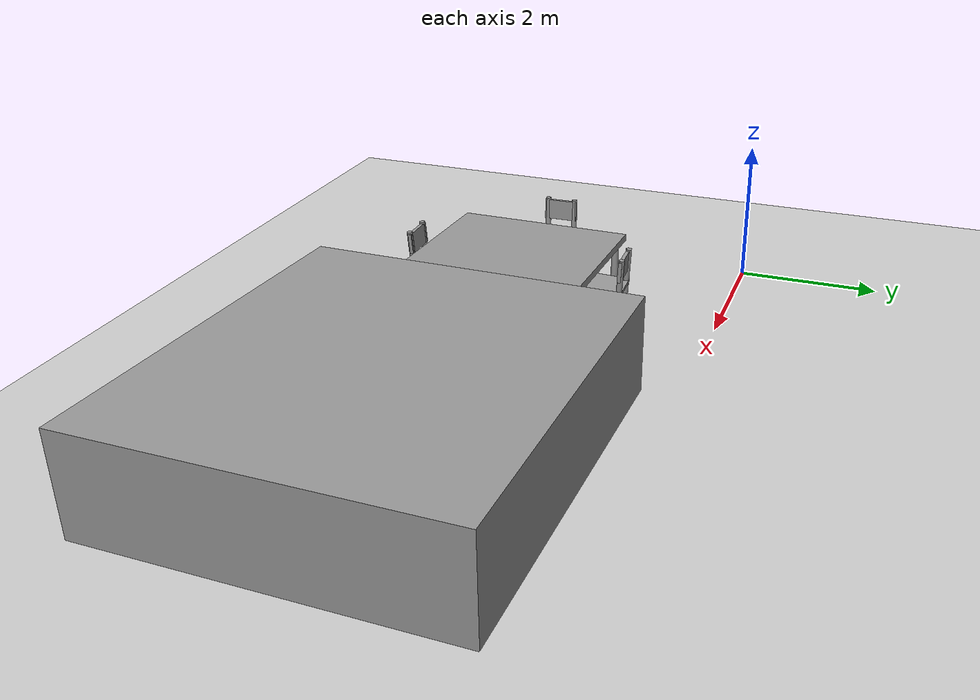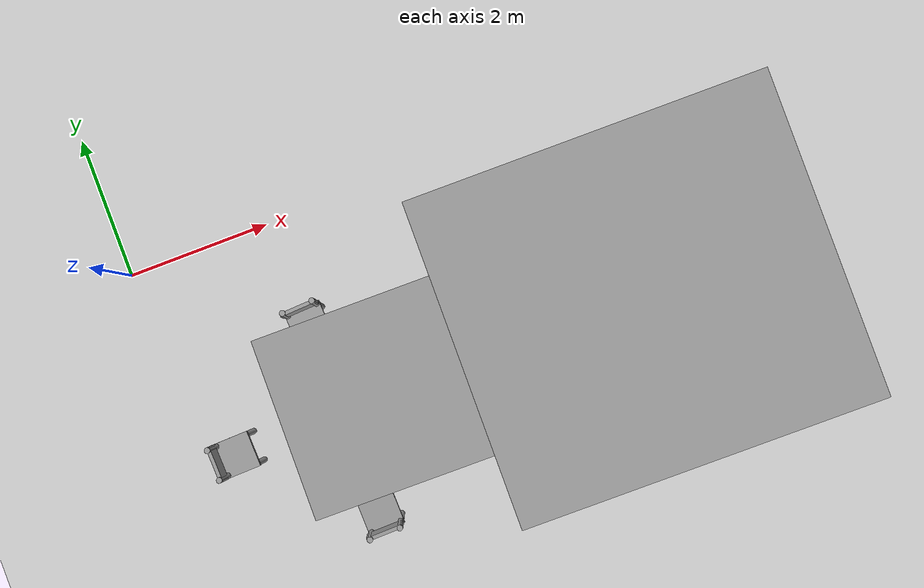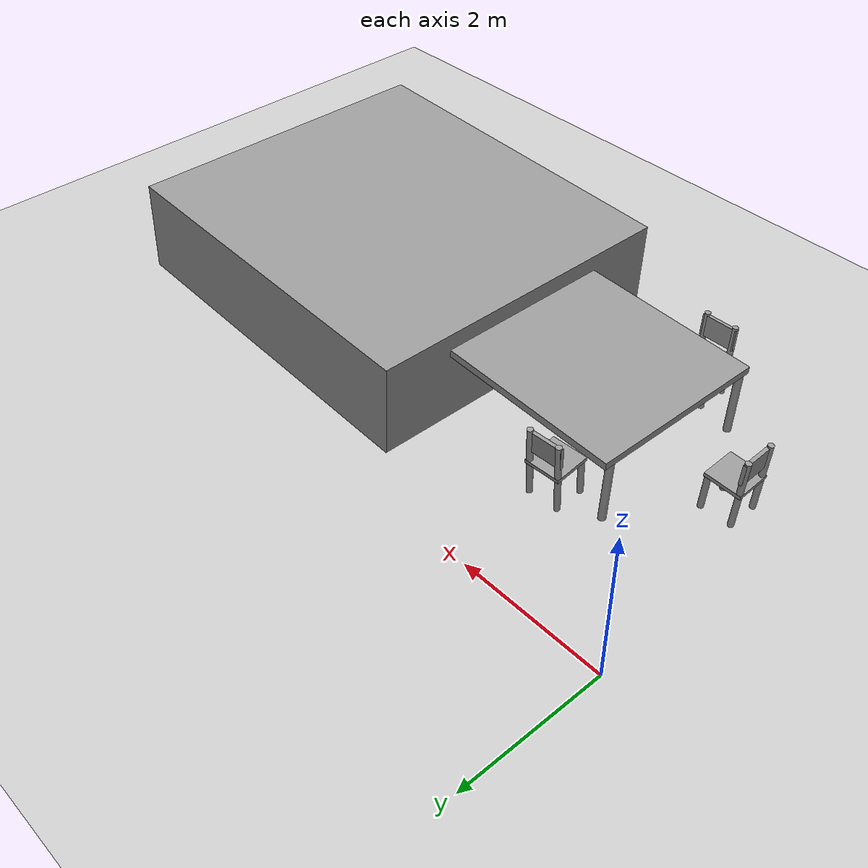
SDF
<sdf version="1.6">
 <world name="default">
  <model name="ground_plane">
   <static>1</static>
   <link name="link">
    <collision name="collision">
     <geometry><plane><normal>0 0 1</normal><size>100 100</size></plane></geometry>
     <surface><friction><ode><mu>100</mu><mu2>50</mu2></ode></friction></surface>
    </collision>
    <visual name="visual">
     <cast_shadows>0</cast_shadows>
     <geometry><plane><normal>0 0 1</normal><size>100 100</size></plane></geometry>
     <material>
      <script><uri>file://media/materials/scripts/gazebo.material</uri><name>Gazebo/Grey</name></script>
     </material>
    </visual>
   </link>
  </model>
  <model name="chair">
   <link name="link_2">
    <pose>0.235 -0.21 -0.2375 0 -0 0</pose>
    <inertial>
     <mass>1</mass>
     <inertia><ixx>0.145833</ixx><ixy>0</ixy><ixz>0</ixz><iyy>0.145833</iyy><iyz>0</iyz><izz>0.125</izz></inertia>
    </inertial>
    <visual name="visual">
     <geometry><cylinder><radius>0.04</radius><length>0.5</length></cylinder></geometry>
     <material>
      <lighting>1</lighting>
      <script><uri>file://media/materials/scripts/gazebo.material</uri><name>Gazebo/Grey</name></script>
      <shader type="pixel"><normal_map>__default__</normal_map></shader>
      <ambient>0.3 0.3 0.3 1</ambient>
      <diffuse>0.7 0.7 0.7 1</diffuse>
      <specular>0.01 0.01 0.01 1</specular>
      <emissive>0 0 0 1</emissive>
     </material>
    </visual>
    <collision name="collision">
     <geometry><cylinder><radius>0.04</radius><length>0.5</length></cylinder></geometry>
     <surface>
      <friction>
       <ode><mu>1</mu><mu2>1</mu2><fdir1>0 0 0</fdir1><slip1>0</slip1><slip2>0</slip2></ode>
       <torsional>
        <coefficient>1</coefficient>
        <patch_radius>0</patch_radius>
        <surface_radius>0</surface_radius>
        <use_patch_radius>1</use_patch_radius>
        <ode><slip>0</slip></ode>
       </torsional>
      </friction>
      <bounce><restitution_coefficient>0</restitution_coefficient><threshold>1e+06</threshold></bounce>
      <contact>
       <collide_without_contact>0</collide_without_contact>
       <collide_without_contact_bitmask>1</collide_without_contact_bitmask>
       <collide_bitmask>1</collide_bitmask>
       <ode>
        <soft_cfm>0</soft_cfm>
        <soft_erp>0.2</soft_erp>
        <kp>1e+13</kp>
        <kd>1</kd>
        <max_vel>0.01</max_vel>
        <min_depth>0</min_depth>
       </ode>
       <bullet>
        <split_impulse>1</split_impulse>
        <split_impulse_penetration_threshold>-0.01</split_impulse_penetration_threshold>
        <soft_cfm>0</soft_cfm>
        <soft_erp>0.2</soft_erp>
        <kp>1e+13</kp>
        <kd>1</kd>
       </bullet>
      </contact>
     </surface>
    </collision>
   </link>
   <link name="link_2_clone">
    <pose>0.245 0.21 -0.2375 0 -0 0</pose>
    <inertial>
     <mass>1</mass>
     <inertia><ixx>0.145833</ixx><ixy>0</ixy><ixz>0</ixz><iyy>0.145833</iyy><iyz>0</iyz><izz>0.125</izz></inertia>
    </inertial>
    <visual name="visual">
     <geometry><cylinder><radius>0.04</radius><length>0.5</length></cylinder></geometry>
     <material>
      <lighting>1</lighting>
      <script><uri>file://media/materials/scripts/gazebo.material</uri><name>Gazebo/Grey</name></script>
      <shader type="pixel"><normal_map>__default__</normal_map></shader>
      <ambient>0.3 0.3 0.3 1</ambient>
      <diffuse>0.7 0.7 0.7 1</diffuse>
      <specular>0.01 0.01 0.01 1</specular>
      <emissive>0 0 0 1</emissive>
     </material>
    </visual>
    <collision name="collision">
     <geometry><cylinder><radius>0.04</radius><length>0.5</length></cylinder></geometry>
     <surface>
      <friction>
       <ode><mu>1</mu><mu2>1</mu2><fdir1>0 0 0</fdir1><slip1>0</slip1><slip2>0</slip2></ode>
       <torsional>
        <coefficient>1</coefficient>
        <patch_radius>0</patch_radius>
        <surface_radius>0</surface_radius>
        <use_patch_radius>1</use_patch_radius>
        <ode><slip>0</slip></ode>
       </torsional>
      </friction>
      <bounce><restitution_coefficient>0</restitution_coefficient><threshold>1e+06</threshold></bounce>
      <contact>
       <collide_without_contact>0</collide_without_contact>
       <collide_without_contact_bitmask>1</collide_without_contact_bitmask>
       <collide_bitmask>1</collide_bitmask>
       <ode>
        <soft_cfm>0</soft_cfm>
        <soft_erp>0.2</soft_erp>
        <kp>1e+13</kp>
        <kd>1</kd>
        <max_vel>0.01</max_vel>
        <min_depth>0</min_depth>
       </ode>
       <bullet>
        <split_impulse>1</split_impulse>
        <split_impulse_penetration_threshold>-0.01</split_impulse_penetration_threshold>
        <soft_cfm>0</soft_cfm>
        <soft_erp>0.2</soft_erp>
        <kp>1e+13</kp>
        <kd>1</kd>
       </bullet>
      </contact>
     </surface>
    </collision>
   </link>
   <link name="link_2_clone_1">
    <pose>-0.175 -0.21 0.0375 0 -0 0</pose>
    <inertial>
     <mass>1</mass>
     <inertia><ixx>0.145833</ixx><ixy>0</ixy><ixz>0</ixz><iyy>0.145833</iyy><iyz>0</iyz><izz>0.125</izz></inertia>
    </inertial>
    <visual name="visual">
     <geometry><cylinder><radius>0.04</radius><length>1</length></cylinder></geometry>
     <material>
      <lighting>1</lighting>
      <script><uri>file://media/materials/scripts/gazebo.material</uri><name>Gazebo/Grey</name></script>
      <shader type="pixel"><normal_map>__default__</normal_map></shader>
      <ambient>0.3 0.3 0.3 1</ambient>
      <diffuse>0.7 0.7 0.7 1</diffuse>
      <specular>0.01 0.01 0.01 1</specular>
      <emissive>0 0 0 1</emissive>
     </material>
    </visual>
    <collision name="collision">
     <geometry><cylinder><radius>0.04</radius><length>1</length></cylinder></geometry>
     <surface>
      <friction>
       <ode><mu>1</mu><mu2>1</mu2><fdir1>0 0 0</fdir1><slip1>0</slip1><slip2>0</slip2></ode>
       <torsional>
        <coefficient>1</coefficient>
        <patch_radius>0</patch_radius>
        <surface_radius>0</surface_radius>
        <use_patch_radius>1</use_patch_radius>
        <ode><slip>0</slip></ode>
       </torsional>
      </friction>
      <bounce><restitution_coefficient>0</restitution_coefficient><threshold>1e+06</threshold></bounce>
      <contact>
       <collide_without_contact>0</collide_without_contact>
       <collide_without_contact_bitmask>1</collide_without_contact_bitmask>
       <collide_bitmask>1</collide_bitmask>
       <ode>
        <soft_cfm>0</soft_cfm>
        <soft_erp>0.2</soft_erp>
        <kp>1e+13</kp>
        <kd>1</kd>
        <max_vel>0.01</max_vel>
        <min_depth>0</min_depth>
       </ode>
       <bullet>
        <split_impulse>1</split_impulse>
        <split_impulse_penetration_threshold>-0.01</split_impulse_penetration_threshold>
        <soft_cfm>0</soft_cfm>
        <soft_erp>0.2</soft_erp>
        <kp>1e+13</kp>
        <kd>1</kd>
       </bullet>
      </contact>
     </surface>
    </collision>
   </link>
   <link name="link_2_clone_1_clone">
    <pose>-0.175 0.21 0.0375 0 -0 0</pose>
    <inertial>
     <mass>1</mass>
     <inertia><ixx>0.145833</ixx><ixy>0</ixy><ixz>0</ixz><iyy>0.145833</iyy><iyz>0</iyz><izz>0.125</izz></inertia>
    </inertial>
    <visual name="visual">
     <geometry><cylinder><radius>0.04</radius><length>1</length></cylinder></geometry>
     <material>
      <lighting>1</lighting>
      <script><uri>file://media/materials/scripts/gazebo.material</uri><name>Gazebo/Grey</name></script>
      <shader type="pixel"><normal_map>__default__</normal_map></shader>
      <ambient>0.3 0.3 0.3 1</ambient>
      <diffuse>0.7 0.7 0.7 1</diffuse>
      <specular>0.01 0.01 0.01 1</specular>
      <emissive>0 0 0 1</emissive>
     </material>
    </visual>
    <collision name="collision">
     <geometry><cylinder><radius>0.04</radius><length>1</length></cylinder></geometry>
     <surface>
      <friction>
       <ode><mu>1</mu><mu2>1</mu2><fdir1>0 0 0</fdir1><slip1>0</slip1><slip2>0</slip2></ode>
       <torsional>
        <coefficient>1</coefficient>
        <patch_radius>0</patch_radius>
        <surface_radius>0</surface_radius>
        <use_patch_radius>1</use_patch_radius>
        <ode><slip>0</slip></ode>
       </torsional>
      </friction>
      <bounce><restitution_coefficient>0</restitution_coefficient><threshold>1e+06</threshold></bounce>
      <contact>
       <collide_without_contact>0</collide_without_contact>
       <collide_without_contact_bitmask>1</collide_without_contact_bitmask>
       <collide_bitmask>1</collide_bitmask>
       <ode>
        <soft_cfm>0</soft_cfm>
        <soft_erp>0.2</soft_erp>
        <kp>1e+13</kp>
        <kd>1</kd>
        <max_vel>0.01</max_vel>
        <min_depth>0</min_depth>
       </ode>
       <bullet>
        <split_impulse>1</split_impulse>
        <split_impulse_penetration_threshold>-0.01</split_impulse_penetration_threshold>
        <soft_cfm>0</soft_cfm>
        <soft_erp>0.2</soft_erp>
        <kp>1e+13</kp>
        <kd>1</kd>
       </bullet>
      </contact>
     </surface>
    </collision>
   </link>
   <link name="link_3">
    <pose>0.035 -0 0.0375 0 -0 0</pose>
    <inertial>
     <mass>1</mass>
     <inertia>
      <ixx>0.166667</ixx>
      <ixy>0</ixy>
      <ixz>0</ixz>
      <iyy>0.166667</iyy>
      <iyz>0</iyz>
      <izz>0.166667</izz>
     </inertia>
    </inertial>
    <visual name="visual">
     <geometry><box><size>0.5 0.5 0.05</size></box></geometry>
     <material>
      <lighting>1</lighting>
      <script><uri>file://media/materials/scripts/gazebo.material</uri><name>Gazebo/Grey</name></script>
      <shader type="pixel"><normal_map>__default__</normal_map></shader>
      <ambient>0.3 0.3 0.3 1</ambient>
      <diffuse>0.7 0.7 0.7 1</diffuse>
      <specular>0.01 0.01 0.01 1</specular>
      <emissive>0 0 0 1</emissive>
     </material>
    </visual>
    <collision name="collision">
     <geometry><box><size>0.5 0.5 0.05</size></box></geometry>
     <surface>
      <friction>
       <ode><mu>1</mu><mu2>1</mu2><fdir1>0 0 0</fdir1><slip1>0</slip1><slip2>0</slip2></ode>
       <torsional>
        <coefficient>1</coefficient>
        <patch_radius>0</patch_radius>
        <surface_radius>0</surface_radius>
        <use_patch_radius>1</use_patch_radius>
        <ode><slip>0</slip></ode>
       </torsional>
      </friction>
      <bounce><restitution_coefficient>0</restitution_coefficient><threshold>1e+06</threshold></bounce>
      <contact>
       <collide_without_contact>0</collide_without_contact>
       <collide_without_contact_bitmask>1</collide_without_contact_bitmask>
       <collide_bitmask>1</collide_bitmask>
       <ode>
        <soft_cfm>0</soft_cfm>
        <soft_erp>0.2</soft_erp>
        <kp>1e+13</kp>
        <kd>1</kd>
        <max_vel>0.01</max_vel>
        <min_depth>0</min_depth>
       </ode>
       <bullet>
        <split_impulse>1</split_impulse>
        <split_impulse_penetration_threshold>-0.01</split_impulse_penetration_threshold>
        <soft_cfm>0</soft_cfm>
        <soft_erp>0.2</soft_erp>
        <kp>1e+13</kp>
        <kd>1</kd>
       </bullet>
      </contact>
     </surface>
    </collision>
   </link>
   <link name="link_4">
    <pose>-0.165 -0 0.3625 0 -0 0</pose>
    <inertial>
     <mass>1</mass>
     <inertia>
      <ixx>0.166667</ixx>
      <ixy>0</ixy>
      <ixz>0</ixz>
      <iyy>0.166667</iyy>
      <iyz>0</iyz>
      <izz>0.166667</izz>
     </inertia>
    </inertial>
    <visual name="visual">
     <geometry><box><size>0.05 0.5 0.3</size></box></geometry>
     <material>
      <lighting>1</lighting>
      <script><uri>file://media/materials/scripts/gazebo.material</uri><name>Gazebo/Grey</name></script>
      <shader type="pixel"><normal_map>__default__</normal_map></shader>
      <ambient>0.3 0.3 0.3 1</ambient>
      <diffuse>0.7 0.7 0.7 1</diffuse>
      <specular>0.01 0.01 0.01 1</specular>
      <emissive>0 0 0 1</emissive>
     </material>
    </visual>
    <collision name="collision">
     <geometry><box><size>0.05 0.5 0.3</size></box></geometry>
     <surface>
      <friction>
       <ode><mu>1</mu><mu2>1</mu2><fdir1>0 0 0</fdir1><slip1>0</slip1><slip2>0</slip2></ode>
       <torsional>
        <coefficient>1</coefficient>
        <patch_radius>0</patch_radius>
        <surface_radius>0</surface_radius>
        <use_patch_radius>1</use_patch_radius>
        <ode><slip>0</slip></ode>
       </torsional>
      </friction>
      <bounce><restitution_coefficient>0</restitution_coefficient><threshold>1e+06</threshold></bounce>
      <contact>
       <collide_without_contact>0</collide_without_contact>
       <collide_without_contact_bitmask>1</collide_without_contact_bitmask>
       <collide_bitmask>1</collide_bitmask>
       <ode>
        <soft_cfm>0</soft_cfm>
        <soft_erp>0.2</soft_erp>
        <kp>1e+13</kp>
        <kd>1</kd>
        <max_vel>0.01</max_vel>
        <min_depth>0</min_depth>
       </ode>
       <bullet>
        <split_impulse>1</split_impulse>
        <split_impulse_penetration_threshold>-0.01</split_impulse_penetration_threshold>
        <soft_cfm>0</soft_cfm>
        <soft_erp>0.2</soft_erp>
        <kp>1e+13</kp>
        <kd>1</kd>
       </bullet>
      </contact>
     </surface>
    </collision>
   </link>
   <joint name="link_3_JOINT_10" type="fixed">
    <parent>link_3</parent>
    <child>link_2_clone_1_clone</child>
    <physics>
     <ode><limit><cfm>0</cfm><erp>0.2</erp></limit><suspension><cfm>0</cfm><erp>0.2</erp></suspension></ode>
    </physics>
   </joint>
   <joint name="link_3_JOINT_11" type="fixed">
    <parent>link_3</parent>
    <child>link_2_clone_1</child>
    <physics>
     <ode><limit><cfm>0</cfm><erp>0.2</erp></limit><suspension><cfm>0</cfm><erp>0.2</erp></suspension></ode>
    </physics>
   </joint>
   <joint name="link_3_JOINT_12" type="fixed">
    <parent>link_3</parent>
    <child>link_2</child>
    <physics>
     <ode><limit><cfm>0</cfm><erp>0.2</erp></limit><suspension><cfm>0</cfm><erp>0.2</erp></suspension></ode>
    </physics>
   </joint>
   <joint name="link_3_JOINT_14" type="fixed">
    <parent>link_3</parent>
    <child>link_4</child>
    <physics>
     <ode><limit><cfm>0</cfm><erp>0.2</erp></limit><suspension><cfm>0</cfm><erp>0.2</erp></suspension></ode>
    </physics>
   </joint>
   <joint name="link_3_JOINT_9" type="fixed">
    <parent>link_3</parent>
    <child>link_2_clone</child>
    <physics>
     <ode><limit><cfm>0</cfm><erp>0.2</erp></limit><suspension><cfm>0</cfm><erp>0.2</erp></suspension></ode>
    </physics>
   </joint>
   <static>0</static>
   <pose>0.56431 -2.8377 0.474728 -3e-06 -0.060894 0.028854</pose>
  </model>
  <model name="kitchenCounter">
   <link name="link_8">
    <pose>3.4125 0.01 -0.0325 0 -0 0</pose>
    <inertial>
     <mass>1</mass>
     <inertia>
      <ixx>0.166667</ixx>
      <ixy>0</ixy>
      <ixz>0</ixz>
      <iyy>0.166667</iyy>
      <iyz>0</iyz>
      <izz>0.166667</izz>
     </inertia>
    </inertial>
    <visual name="visual">
     <geometry><box><size>5 4.5 1.3</size></box></geometry>
     <material>
      <lighting>1</lighting>
      <script><uri>file://media/materials/scripts/gazebo.material</uri><name>Gazebo/Grey</name></script>
      <shader type="pixel"><normal_map>__default__</normal_map></shader>
      <ambient>0.3 0.3 0.3 1</ambient>
      <diffuse>0.7 0.7 0.7 1</diffuse>
      <specular>0.01 0.01 0.01 1</specular>
      <emissive>0 0 0 1</emissive>
     </material>
    </visual>
    <collision name="collision">
     <geometry><box><size>5 4.5 1.3</size></box></geometry>
     <surface>
      <friction>
       <ode><mu>1</mu><mu2>1</mu2><fdir1>0 0 0</fdir1><slip1>0</slip1><slip2>0</slip2></ode>
       <torsional>
        <coefficient>1</coefficient>
        <patch_radius>0</patch_radius>
        <surface_radius>0</surface_radius>
        <use_patch_radius>1</use_patch_radius>
        <ode><slip>0</slip></ode>
       </torsional>
      </friction>
      <bounce><restitution_coefficient>0</restitution_coefficient><threshold>1e+06</threshold></bounce>
      <contact>
       <collide_without_contact>0</collide_without_contact>
       <collide_without_contact_bitmask>1</collide_without_contact_bitmask>
       <collide_bitmask>1</collide_bitmask>
       <ode>
        <soft_cfm>0</soft_cfm>
        <soft_erp>0.2</soft_erp>
        <kp>1e+13</kp>
        <kd>1</kd>
        <max_vel>0.01</max_vel>
        <min_depth>0</min_depth>
       </ode>
       <bullet>
        <split_impulse>1</split_impulse>
        <split_impulse_penetration_threshold>-0.01</split_impulse_penetration_threshold>
        <soft_cfm>0</soft_cfm>
        <soft_erp>0.2</soft_erp>
        <kp>1e+13</kp>
        <kd>1</kd>
       </bullet>
      </contact>
     </surface>
    </collision>
   </link>
   <link name="link_10">
    <pose>-1.5375 1.12 -0.1525 0 -0 0</pose>
    <inertial>
     <mass>1</mass>
     <inertia><ixx>0.145833</ixx><ixy>0</ixy><ixz>0</ixz><iyy>0.145833</iyy><iyz>0</iyz><izz>0.125</izz></inertia>
    </inertial>
    <visual name="visual">
     <geometry><cylinder><radius>0.05</radius><length>0.9</length></cylinder></geometry>
     <material>
      <lighting>1</lighting>
      <script><uri>file://media/materials/scripts/gazebo.material</uri><name>Gazebo/Grey</name></script>
      <shader type="pixel"><normal_map>__default__</normal_map></shader>
      <ambient>0.3 0.3 0.3 1</ambient>
      <diffuse>0.7 0.7 0.7 1</diffuse>
      <specular>0.01 0.01 0.01 1</specular>
      <emissive>0 0 0 1</emissive>
     </material>
    </visual>
    <collision name="collision">
     <geometry><cylinder><radius>0.05</radius><length>0.9</length></cylinder></geometry>
     <surface>
      <friction>
       <ode><mu>1</mu><mu2>1</mu2><fdir1>0 0 0</fdir1><slip1>0</slip1><slip2>0</slip2></ode>
       <torsional>
        <coefficient>1</coefficient>
        <patch_radius>0</patch_radius>
        <surface_radius>0</surface_radius>
        <use_patch_radius>1</use_patch_radius>
        <ode><slip>0</slip></ode>
       </torsional>
      </friction>
      <bounce><restitution_coefficient>0</restitution_coefficient><threshold>1e+06</threshold></bounce>
      <contact>
       <collide_without_contact>0</collide_without_contact>
       <collide_without_contact_bitmask>1</collide_without_contact_bitmask>
       <collide_bitmask>1</collide_bitmask>
       <ode>
        <soft_cfm>0</soft_cfm>
        <soft_erp>0.2</soft_erp>
        <kp>1e+13</kp>
        <kd>1</kd>
        <max_vel>0.01</max_vel>
        <min_depth>0</min_depth>
       </ode>
       <bullet>
        <split_impulse>1</split_impulse>
        <split_impulse_penetration_threshold>-0.01</split_impulse_penetration_threshold>
        <soft_cfm>0</soft_cfm>
        <soft_erp>0.2</soft_erp>
        <kp>1e+13</kp>
        <kd>1</kd>
       </bullet>
      </contact>
     </surface>
    </collision>
   </link>
   <link name="link_10_clone">
    <pose>-1.5375 -1.14 -0.1525 0 -0 0</pose>
    <inertial>
     <mass>1</mass>
     <inertia><ixx>0.145833</ixx><ixy>0</ixy><ixz>0</ixz><iyy>0.145833</iyy><iyz>0</iyz><izz>0.125</izz></inertia>
    </inertial>
    <visual name="visual">
     <geometry><cylinder><radius>0.05</radius><length>0.9</length></cylinder></geometry>
     <material>
      <lighting>1</lighting>
      <script><uri>file://media/materials/scripts/gazebo.material</uri><name>Gazebo/Grey</name></script>
      <shader type="pixel"><normal_map>__default__</normal_map></shader>
      <ambient>0.3 0.3 0.3 1</ambient>
      <diffuse>0.7 0.7 0.7 1</diffuse>
      <specular>0.01 0.01 0.01 1</specular>
      <emissive>0 0 0 1</emissive>
     </material>
    </visual>
    <collision name="collision">
     <geometry><cylinder><radius>0.05</radius><length>0.9</length></cylinder></geometry>
     <surface>
      <friction>
       <ode><mu>1</mu><mu2>1</mu2><fdir1>0 0 0</fdir1><slip1>0</slip1><slip2>0</slip2></ode>
       <torsional>
        <coefficient>1</coefficient>
        <patch_radius>0</patch_radius>
        <surface_radius>0</surface_radius>
        <use_patch_radius>1</use_patch_radius>
        <ode><slip>0</slip></ode>
       </torsional>
      </friction>
      <bounce><restitution_coefficient>0</restitution_coefficient><threshold>1e+06</threshold></bounce>
      <contact>
       <collide_without_contact>0</collide_without_contact>
       <collide_without_contact_bitmask>1</collide_without_contact_bitmask>
       <collide_bitmask>1</collide_bitmask>
       <ode>
        <soft_cfm>0</soft_cfm>
        <soft_erp>0.2</soft_erp>
        <kp>1e+13</kp>
        <kd>1</kd>
        <max_vel>0.01</max_vel>
        <min_depth>0</min_depth>
       </ode>
       <bullet>
        <split_impulse>1</split_impulse>
        <split_impulse_penetration_threshold>-0.01</split_impulse_penetration_threshold>
        <soft_cfm>0</soft_cfm>
        <soft_erp>0.2</soft_erp>
        <kp>1e+13</kp>
        <kd>1</kd>
       </bullet>
      </contact>
     </surface>
    </collision>
   </link>
   <link name="link_9">
    <pose>-0.3375 0.01 0.3375 0 -0 0</pose>
    <inertial>
     <mass>1</mass>
     <inertia>
      <ixx>0.166667</ixx>
      <ixy>0</ixy>
      <ixz>0</ixz>
      <iyy>0.166667</iyy>
      <iyz>0</iyz>
      <izz>0.166667</izz>
     </inertia>
    </inertial>
    <visual name="visual">
     <geometry><box><size>2.5 2.5 0.1</size></box></geometry>
     <material>
      <lighting>1</lighting>
      <script><uri>file://media/materials/scripts/gazebo.material</uri><name>Gazebo/Grey</name></script>
      <shader type="pixel"><normal_map>__default__</normal_map></shader>
      <ambient>0.3 0.3 0.3 1</ambient>
      <diffuse>0.7 0.7 0.7 1</diffuse>
      <specular>0.01 0.01 0.01 1</specular>
      <emissive>0 0 0 1</emissive>
     </material>
    </visual>
    <collision name="collision">
     <geometry><box><size>2.5 2.5 0.1</size></box></geometry>
     <surface>
      <friction>
       <ode><mu>1</mu><mu2>1</mu2><fdir1>0 0 0</fdir1><slip1>0</slip1><slip2>0</slip2></ode>
       <torsional>
        <coefficient>1</coefficient>
        <patch_radius>0</patch_radius>
        <surface_radius>0</surface_radius>
        <use_patch_radius>1</use_patch_radius>
        <ode><slip>0</slip></ode>
       </torsional>
      </friction>
      <bounce><restitution_coefficient>0</restitution_coefficient><threshold>1e+06</threshold></bounce>
      <contact>
       <collide_without_contact>0</collide_without_contact>
       <collide_without_contact_bitmask>1</collide_without_contact_bitmask>
       <collide_bitmask>1</collide_bitmask>
       <ode>
        <soft_cfm>0</soft_cfm>
        <soft_erp>0.2</soft_erp>
        <kp>1e+13</kp>
        <kd>1</kd>
        <max_vel>0.01</max_vel>
        <min_depth>0</min_depth>
       </ode>
       <bullet>
        <split_impulse>1</split_impulse>
        <split_impulse_penetration_threshold>-0.01</split_impulse_penetration_threshold>
        <soft_cfm>0</soft_cfm>
        <soft_erp>0.2</soft_erp>
        <kp>1e+13</kp>
        <kd>1</kd>
       </bullet>
      </contact>
     </surface>
    </collision>
   </link>
   <joint name="link_8_JOINT_21" type="fixed">
    <parent>link_8</parent>
    <child>link_9</child>
    <physics>
     <ode><limit><cfm>0</cfm><erp>0.2</erp></limit><suspension><cfm>0</cfm><erp>0.2</erp></suspension></ode>
    </physics>
   </joint>
   <joint name="link_9_JOINT_22" type="fixed">
    <parent>link_9</parent>
    <child>link_10</child>
    <physics>
     <ode><limit><cfm>0</cfm><erp>0.2</erp></limit><suspension><cfm>0</cfm><erp>0.2</erp></suspension></ode>
    </physics>
   </joint>
   <joint name="link_9_JOINT_23" type="fixed">
    <parent>link_9</parent>
    <child>link_10_clone</child>
    <physics>
     <ode><limit><cfm>0</cfm><erp>0.2</erp></limit><suspension><cfm>0</cfm><erp>0.2</erp></suspension></ode>
    </physics>
   </joint>
   <static>0</static>
   <pose>2.96954 -2.77399 0.653071 -1e-06 -0.031883 -0.010572</pose>
  </model>
  <model name="chair_clone_clone">
   <link name="link_2">
    <pose>0.235 -0.21 -0.2375 0 -0 0</pose>
    <inertial>
     <mass>1</mass>
     <inertia><ixx>0.145833</ixx><ixy>0</ixy><ixz>0</ixz><iyy>0.145833</iyy><iyz>0</iyz><izz>0.125</izz></inertia>
    </inertial>
    <visual name="visual">
     <geometry><cylinder><radius>0.04</radius><length>0.5</length></cylinder></geometry>
     <material>
      <lighting>1</lighting>
      <script><uri>file://media/materials/scripts/gazebo.material</uri><name>Gazebo/Grey</name></script>
      <shader type="pixel"><normal_map>__default__</normal_map></shader>
      <ambient>0.3 0.3 0.3 1</ambient>
      <diffuse>0.7 0.7 0.7 1</diffuse>
      <specular>0.01 0.01 0.01 1</specular>
      <emissive>0 0 0 1</emissive>
     </material>
    </visual>
    <collision name="collision">
     <geometry><cylinder><radius>0.04</radius><length>0.5</length></cylinder></geometry>
     <surface>
      <friction>
       <ode><mu>1</mu><mu2>1</mu2><fdir1>0 0 0</fdir1><slip1>0</slip1><slip2>0</slip2></ode>
       <torsional>
        <coefficient>1</coefficient>
        <patch_radius>0</patch_radius>
        <surface_radius>0</surface_radius>
        <use_patch_radius>1</use_patch_radius>
        <ode><slip>0</slip></ode>
       </torsional>
      </friction>
      <bounce><restitution_coefficient>0</restitution_coefficient><threshold>1e+06</threshold></bounce>
      <contact>
       <collide_without_contact>0</collide_without_contact>
       <collide_without_contact_bitmask>1</collide_without_contact_bitmask>
       <collide_bitmask>1</collide_bitmask>
       <ode>
        <soft_cfm>0</soft_cfm>
        <soft_erp>0.2</soft_erp>
        <kp>1e+13</kp>
        <kd>1</kd>
        <max_vel>0.01</max_vel>
        <min_depth>0</min_depth>
       </ode>
       <bullet>
        <split_impulse>1</split_impulse>
        <split_impulse_penetration_threshold>-0.01</split_impulse_penetration_threshold>
        <soft_cfm>0</soft_cfm>
        <soft_erp>0.2</soft_erp>
        <kp>1e+13</kp>
        <kd>1</kd>
       </bullet>
      </contact>
     </surface>
    </collision>
   </link>
   <link name="link_2_clone">
    <pose>0.245 0.21 -0.2375 0 -0 0</pose>
    <inertial>
     <mass>1</mass>
     <inertia><ixx>0.145833</ixx><ixy>0</ixy><ixz>0</ixz><iyy>0.145833</iyy><iyz>0</iyz><izz>0.125</izz></inertia>
    </inertial>
    <visual name="visual">
     <geometry><cylinder><radius>0.04</radius><length>0.5</length></cylinder></geometry>
     <material>
      <lighting>1</lighting>
      <script><uri>file://media/materials/scripts/gazebo.material</uri><name>Gazebo/Grey</name></script>
      <shader type="pixel"><normal_map>__default__</normal_map></shader>
      <ambient>0.3 0.3 0.3 1</ambient>
      <diffuse>0.7 0.7 0.7 1</diffuse>
      <specular>0.01 0.01 0.01 1</specular>
      <emissive>0 0 0 1</emissive>
     </material>
    </visual>
    <collision name="collision">
     <geometry><cylinder><radius>0.04</radius><length>0.5</length></cylinder></geometry>
     <surface>
      <friction>
       <ode><mu>1</mu><mu2>1</mu2><fdir1>0 0 0</fdir1><slip1>0</slip1><slip2>0</slip2></ode>
       <torsional>
        <coefficient>1</coefficient>
        <patch_radius>0</patch_radius>
        <surface_radius>0</surface_radius>
        <use_patch_radius>1</use_patch_radius>
        <ode><slip>0</slip></ode>
       </torsional>
      </friction>
      <bounce><restitution_coefficient>0</restitution_coefficient><threshold>1e+06</threshold></bounce>
      <contact>
       <collide_without_contact>0</collide_without_contact>
       <collide_without_contact_bitmask>1</collide_without_contact_bitmask>
       <collide_bitmask>1</collide_bitmask>
       <ode>
        <soft_cfm>0</soft_cfm>
        <soft_erp>0.2</soft_erp>
        <kp>1e+13</kp>
        <kd>1</kd>
        <max_vel>0.01</max_vel>
        <min_depth>0</min_depth>
       </ode>
       <bullet>
        <split_impulse>1</split_impulse>
        <split_impulse_penetration_threshold>-0.01</split_impulse_penetration_threshold>
        <soft_cfm>0</soft_cfm>
        <soft_erp>0.2</soft_erp>
        <kp>1e+13</kp>
        <kd>1</kd>
       </bullet>
      </contact>
     </surface>
    </collision>
   </link>
   <link name="link_2_clone_1">
    <pose>-0.175 -0.21 0.0375 0 -0 0</pose>
    <inertial>
     <mass>1</mass>
     <inertia><ixx>0.145833</ixx><ixy>0</ixy><ixz>0</ixz><iyy>0.145833</iyy><iyz>0</iyz><izz>0.125</izz></inertia>
    </inertial>
    <visual name="visual">
     <geometry><cylinder><radius>0.04</radius><length>1</length></cylinder></geometry>
     <material>
      <lighting>1</lighting>
      <script><uri>file://media/materials/scripts/gazebo.material</uri><name>Gazebo/Grey</name></script>
      <shader type="pixel"><normal_map>__default__</normal_map></shader>
      <ambient>0.3 0.3 0.3 1</ambient>
      <diffuse>0.7 0.7 0.7 1</diffuse>
      <specular>0.01 0.01 0.01 1</specular>
      <emissive>0 0 0 1</emissive>
     </material>
    </visual>
    <collision name="collision">
     <geometry><cylinder><radius>0.04</radius><length>1</length></cylinder></geometry>
     <surface>
      <friction>
       <ode><mu>1</mu><mu2>1</mu2><fdir1>0 0 0</fdir1><slip1>0</slip1><slip2>0</slip2></ode>
       <torsional>
        <coefficient>1</coefficient>
        <patch_radius>0</patch_radius>
        <surface_radius>0</surface_radius>
        <use_patch_radius>1</use_patch_radius>
        <ode><slip>0</slip></ode>
       </torsional>
      </friction>
      <bounce><restitution_coefficient>0</restitution_coefficient><threshold>1e+06</threshold></bounce>
      <contact>
       <collide_without_contact>0</collide_without_contact>
       <collide_without_contact_bitmask>1</collide_without_contact_bitmask>
       <collide_bitmask>1</collide_bitmask>
       <ode>
        <soft_cfm>0</soft_cfm>
        <soft_erp>0.2</soft_erp>
        <kp>1e+13</kp>
        <kd>1</kd>
        <max_vel>0.01</max_vel>
        <min_depth>0</min_depth>
       </ode>
       <bullet>
        <split_impulse>1</split_impulse>
        <split_impulse_penetration_threshold>-0.01</split_impulse_penetration_threshold>
        <soft_cfm>0</soft_cfm>
        <soft_erp>0.2</soft_erp>
        <kp>1e+13</kp>
        <kd>1</kd>
       </bullet>
      </contact>
     </surface>
    </collision>
   </link>
   <link name="link_2_clone_1_clone">
    <pose>-0.175 0.21 0.0375 0 -0 0</pose>
    <inertial>
     <mass>1</mass>
     <inertia><ixx>0.145833</ixx><ixy>0</ixy><ixz>0</ixz><iyy>0.145833</iyy><iyz>0</iyz><izz>0.125</izz></inertia>
    </inertial>
    <visual name="visual">
     <geometry><cylinder><radius>0.04</radius><length>1</length></cylinder></geometry>
     <material>
      <lighting>1</lighting>
      <script><uri>file://media/materials/scripts/gazebo.material</uri><name>Gazebo/Grey</name></script>
      <shader type="pixel"><normal_map>__default__</normal_map></shader>
      <ambient>0.3 0.3 0.3 1</ambient>
      <diffuse>0.7 0.7 0.7 1</diffuse>
      <specular>0.01 0.01 0.01 1</specular>
      <emissive>0 0 0 1</emissive>
     </material>
    </visual>
    <collision name="collision">
     <geometry><cylinder><radius>0.04</radius><length>1</length></cylinder></geometry>
     <surface>
      <friction>
       <ode><mu>1</mu><mu2>1</mu2><fdir1>0 0 0</fdir1><slip1>0</slip1><slip2>0</slip2></ode>
       <torsional>
        <coefficient>1</coefficient>
        <patch_radius>0</patch_radius>
        <surface_radius>0</surface_radius>
        <use_patch_radius>1</use_patch_radius>
        <ode><slip>0</slip></ode>
       </torsional>
      </friction>
      <bounce><restitution_coefficient>0</restitution_coefficient><threshold>1e+06</threshold></bounce>
      <contact>
       <collide_without_contact>0</collide_without_contact>
       <collide_without_contact_bitmask>1</collide_without_contact_bitmask>
       <collide_bitmask>1</collide_bitmask>
       <ode>
        <soft_cfm>0</soft_cfm>
        <soft_erp>0.2</soft_erp>
        <kp>1e+13</kp>
        <kd>1</kd>
        <max_vel>0.01</max_vel>
        <min_depth>0</min_depth>
       </ode>
       <bullet>
        <split_impulse>1</split_impulse>
        <split_impulse_penetration_threshold>-0.01</split_impulse_penetration_threshold>
        <soft_cfm>0</soft_cfm>
        <soft_erp>0.2</soft_erp>
        <kp>1e+13</kp>
        <kd>1</kd>
       </bullet>
      </contact>
     </surface>
    </collision>
   </link>
   <link name="link_3">
    <pose>0.035 -0 0.0375 0 -0 0</pose>
    <inertial>
     <mass>1</mass>
     <inertia>
      <ixx>0.166667</ixx>
      <ixy>0</ixy>
      <ixz>0</ixz>
      <iyy>0.166667</iyy>
      <iyz>0</iyz>
      <izz>0.166667</izz>
     </inertia>
    </inertial>
    <visual name="visual">
     <geometry><box><size>0.5 0.5 0.05</size></box></geometry>
     <material>
      <lighting>1</lighting>
      <script><uri>file://media/materials/scripts/gazebo.material</uri><name>Gazebo/Grey</name></script>
      <shader type="pixel"><normal_map>__default__</normal_map></shader>
      <ambient>0.3 0.3 0.3 1</ambient>
      <diffuse>0.7 0.7 0.7 1</diffuse>
      <specular>0.01 0.01 0.01 1</specular>
      <emissive>0 0 0 1</emissive>
     </material>
    </visual>
    <collision name="collision">
     <geometry><box><size>0.5 0.5 0.05</size></box></geometry>
     <surface>
      <friction>
       <ode><mu>1</mu><mu2>1</mu2><fdir1>0 0 0</fdir1><slip1>0</slip1><slip2>0</slip2></ode>
       <torsional>
        <coefficient>1</coefficient>
        <patch_radius>0</patch_radius>
        <surface_radius>0</surface_radius>
        <use_patch_radius>1</use_patch_radius>
        <ode><slip>0</slip></ode>
       </torsional>
      </friction>
      <bounce><restitution_coefficient>0</restitution_coefficient><threshold>1e+06</threshold></bounce>
      <contact>
       <collide_without_contact>0</collide_without_contact>
       <collide_without_contact_bitmask>1</collide_without_contact_bitmask>
       <collide_bitmask>1</collide_bitmask>
       <ode>
        <soft_cfm>0</soft_cfm>
        <soft_erp>0.2</soft_erp>
        <kp>1e+13</kp>
        <kd>1</kd>
        <max_vel>0.01</max_vel>
        <min_depth>0</min_depth>
       </ode>
       <bullet>
        <split_impulse>1</split_impulse>
        <split_impulse_penetration_threshold>-0.01</split_impulse_penetration_threshold>
        <soft_cfm>0</soft_cfm>
        <soft_erp>0.2</soft_erp>
        <kp>1e+13</kp>
        <kd>1</kd>
       </bullet>
      </contact>
     </surface>
    </collision>
   </link>
   <link name="link_4">
    <pose>-0.165 -0 0.3625 0 -0 0</pose>
    <inertial>
     <mass>1</mass>
     <inertia>
      <ixx>0.166667</ixx>
      <ixy>0</ixy>
      <ixz>0</ixz>
      <iyy>0.166667</iyy>
      <iyz>0</iyz>
      <izz>0.166667</izz>
     </inertia>
    </inertial>
    <visual name="visual">
     <geometry><box><size>0.05 0.5 0.3</size></box></geometry>
     <material>
      <lighting>1</lighting>
      <script><uri>file://media/materials/scripts/gazebo.material</uri><name>Gazebo/Grey</name></script>
      <shader type="pixel"><normal_map>__default__</normal_map></shader>
      <ambient>0.3 0.3 0.3 1</ambient>
      <diffuse>0.7 0.7 0.7 1</diffuse>
      <specular>0.01 0.01 0.01 1</specular>
      <emissive>0 0 0 1</emissive>
     </material>
    </visual>
    <collision name="collision">
     <geometry><box><size>0.05 0.5 0.3</size></box></geometry>
     <surface>
      <friction>
       <ode><mu>1</mu><mu2>1</mu2><fdir1>0 0 0</fdir1><slip1>0</slip1><slip2>0</slip2></ode>
       <torsional>
        <coefficient>1</coefficient>
        <patch_radius>0</patch_radius>
        <surface_radius>0</surface_radius>
        <use_patch_radius>1</use_patch_radius>
        <ode><slip>0</slip></ode>
       </torsional>
      </friction>
      <bounce><restitution_coefficient>0</restitution_coefficient><threshold>1e+06</threshold></bounce>
      <contact>
       <collide_without_contact>0</collide_without_contact>
       <collide_without_contact_bitmask>1</collide_without_contact_bitmask>
       <collide_bitmask>1</collide_bitmask>
       <ode>
        <soft_cfm>0</soft_cfm>
        <soft_erp>0.2</soft_erp>
        <kp>1e+13</kp>
        <kd>1</kd>
        <max_vel>0.01</max_vel>
        <min_depth>0</min_depth>
       </ode>
       <bullet>
        <split_impulse>1</split_impulse>
        <split_impulse_penetration_threshold>-0.01</split_impulse_penetration_threshold>
        <soft_cfm>0</soft_cfm>
        <soft_erp>0.2</soft_erp>
        <kp>1e+13</kp>
        <kd>1</kd>
       </bullet>
      </contact>
     </surface>
    </collision>
   </link>
   <joint name="link_3_JOINT_10" type="fixed">
    <parent>link_3</parent>
    <child>link_2_clone_1_clone</child>
    <physics>
     <ode><limit><cfm>0</cfm><erp>0.2</erp></limit><suspension><cfm>0</cfm><erp>0.2</erp></suspension></ode>
    </physics>
   </joint>
   <joint name="link_3_JOINT_11" type="fixed">
    <parent>link_3</parent>
    <child>link_2_clone_1</child>
    <physics>
     <ode><limit><cfm>0</cfm><erp>0.2</erp></limit><suspension><cfm>0</cfm><erp>0.2</erp></suspension></ode>
    </physics>
   </joint>
   <joint name="link_3_JOINT_12" type="fixed">
    <parent>link_3</parent>
    <child>link_2</child>
    <physics>
     <ode><limit><cfm>0</cfm><erp>0.2</erp></limit><suspension><cfm>0</cfm><erp>0.2</erp></suspension></ode>
    </physics>
   </joint>
   <joint name="link_3_JOINT_14" type="fixed">
    <parent>link_3</parent>
    <child>link_4</child>
    <physics>
     <ode><limit><cfm>0</cfm><erp>0.2</erp></limit><suspension><cfm>0</cfm><erp>0.2</erp></suspension></ode>
    </physics>
   </joint>
   <joint name="link_3_JOINT_9" type="fixed">
    <parent>link_3</parent>
    <child>link_2_clone</child>
    <physics>
     <ode><limit><cfm>0</cfm><erp>0.2</erp></limit><suspension><cfm>0</cfm><erp>0.2</erp></suspension></ode>
    </physics>
   </joint>
   <static>0</static>
   <pose>2.11901 -1.49693 0.474728 -1.9e-05 -0.060877 -1.52271</pose>
  </model>
  <model name="chair_clone_3_clone">
   <link name="link_2">
    <pose>0.235 -0.21 -0.2375 0 -0 0</pose>
    <inertial>
     <mass>1</mass>
     <inertia><ixx>0.145833</ixx><ixy>0</ixy><ixz>0</ixz><iyy>0.145833</iyy><iyz>0</iyz><izz>0.125</izz></inertia>
    </inertial>
    <visual name="visual">
     <geometry><cylinder><radius>0.04</radius><length>0.5</length></cylinder></geometry>
     <material>
      <lighting>1</lighting>
      <script><uri>file://media/materials/scripts/gazebo.material</uri><name>Gazebo/Grey</name></script>
      <shader type="pixel"><normal_map>__default__</normal_map></shader>
      <ambient>0.3 0.3 0.3 1</ambient>
      <diffuse>0.7 0.7 0.7 1</diffuse>
      <specular>0.01 0.01 0.01 1</specular>
      <emissive>0 0 0 1</emissive>
     </material>
    </visual>
    <collision name="collision">
     <geometry><cylinder><radius>0.04</radius><length>0.5</length></cylinder></geometry>
     <surface>
      <friction>
       <ode><mu>1</mu><mu2>1</mu2><fdir1>0 0 0</fdir1><slip1>0</slip1><slip2>0</slip2></ode>
       <torsional>
        <coefficient>1</coefficient>
        <patch_radius>0</patch_radius>
        <surface_radius>0</surface_radius>
        <use_patch_radius>1</use_patch_radius>
        <ode><slip>0</slip></ode>
       </torsional>
      </friction>
      <bounce><restitution_coefficient>0</restitution_coefficient><threshold>1e+06</threshold></bounce>
      <contact>
       <collide_without_contact>0</collide_without_contact>
       <collide_without_contact_bitmask>1</collide_without_contact_bitmask>
       <collide_bitmask>1</collide_bitmask>
       <ode>
        <soft_cfm>0</soft_cfm>
        <soft_erp>0.2</soft_erp>
        <kp>1e+13</kp>
        <kd>1</kd>
        <max_vel>0.01</max_vel>
        <min_depth>0</min_depth>
       </ode>
       <bullet>
        <split_impulse>1</split_impulse>
        <split_impulse_penetration_threshold>-0.01</split_impulse_penetration_threshold>
        <soft_cfm>0</soft_cfm>
        <soft_erp>0.2</soft_erp>
        <kp>1e+13</kp>
        <kd>1</kd>
       </bullet>
      </contact>
     </surface>
    </collision>
   </link>
   <link name="link_2_clone">
    <pose>0.245 0.21 -0.2375 0 -0 0</pose>
    <inertial>
     <mass>1</mass>
     <inertia><ixx>0.145833</ixx><ixy>0</ixy><ixz>0</ixz><iyy>0.145833</iyy><iyz>0</iyz><izz>0.125</izz></inertia>
    </inertial>
    <visual name="visual">
     <geometry><cylinder><radius>0.04</radius><length>0.5</length></cylinder></geometry>
     <material>
      <lighting>1</lighting>
      <script><uri>file://media/materials/scripts/gazebo.material</uri><name>Gazebo/Grey</name></script>
      <shader type="pixel"><normal_map>__default__</normal_map></shader>
      <ambient>0.3 0.3 0.3 1</ambient>
      <diffuse>0.7 0.7 0.7 1</diffuse>
      <specular>0.01 0.01 0.01 1</specular>
      <emissive>0 0 0 1</emissive>
     </material>
    </visual>
    <collision name="collision">
     <geometry><cylinder><radius>0.04</radius><length>0.5</length></cylinder></geometry>
     <surface>
      <friction>
       <ode><mu>1</mu><mu2>1</mu2><fdir1>0 0 0</fdir1><slip1>0</slip1><slip2>0</slip2></ode>
       <torsional>
        <coefficient>1</coefficient>
        <patch_radius>0</patch_radius>
        <surface_radius>0</surface_radius>
        <use_patch_radius>1</use_patch_radius>
        <ode><slip>0</slip></ode>
       </torsional>
      </friction>
      <bounce><restitution_coefficient>0</restitution_coefficient><threshold>1e+06</threshold></bounce>
      <contact>
       <collide_without_contact>0</collide_without_contact>
       <collide_without_contact_bitmask>1</collide_without_contact_bitmask>
       <collide_bitmask>1</collide_bitmask>
       <ode>
        <soft_cfm>0</soft_cfm>
        <soft_erp>0.2</soft_erp>
        <kp>1e+13</kp>
        <kd>1</kd>
        <max_vel>0.01</max_vel>
        <min_depth>0</min_depth>
       </ode>
       <bullet>
        <split_impulse>1</split_impulse>
        <split_impulse_penetration_threshold>-0.01</split_impulse_penetration_threshold>
        <soft_cfm>0</soft_cfm>
        <soft_erp>0.2</soft_erp>
        <kp>1e+13</kp>
        <kd>1</kd>
       </bullet>
      </contact>
     </surface>
    </collision>
   </link>
   <link name="link_2_clone_1">
    <pose>-0.175 -0.21 0.0375 0 -0 0</pose>
    <inertial>
     <mass>1</mass>
     <inertia><ixx>0.145833</ixx><ixy>0</ixy><ixz>0</ixz><iyy>0.145833</iyy><iyz>0</iyz><izz>0.125</izz></inertia>
    </inertial>
    <visual name="visual">
     <geometry><cylinder><radius>0.04</radius><length>1</length></cylinder></geometry>
     <material>
      <lighting>1</lighting>
      <script><uri>file://media/materials/scripts/gazebo.material</uri><name>Gazebo/Grey</name></script>
      <shader type="pixel"><normal_map>__default__</normal_map></shader>
      <ambient>0.3 0.3 0.3 1</ambient>
      <diffuse>0.7 0.7 0.7 1</diffuse>
      <specular>0.01 0.01 0.01 1</specular>
      <emissive>0 0 0 1</emissive>
     </material>
    </visual>
    <collision name="collision">
     <geometry><cylinder><radius>0.04</radius><length>1</length></cylinder></geometry>
     <surface>
      <friction>
       <ode><mu>1</mu><mu2>1</mu2><fdir1>0 0 0</fdir1><slip1>0</slip1><slip2>0</slip2></ode>
       <torsional>
        <coefficient>1</coefficient>
        <patch_radius>0</patch_radius>
        <surface_radius>0</surface_radius>
        <use_patch_radius>1</use_patch_radius>
        <ode><slip>0</slip></ode>
       </torsional>
      </friction>
      <bounce><restitution_coefficient>0</restitution_coefficient><threshold>1e+06</threshold></bounce>
      <contact>
       <collide_without_contact>0</collide_without_contact>
       <collide_without_contact_bitmask>1</collide_without_contact_bitmask>
       <collide_bitmask>1</collide_bitmask>
       <ode>
        <soft_cfm>0</soft_cfm>
        <soft_erp>0.2</soft_erp>
        <kp>1e+13</kp>
        <kd>1</kd>
        <max_vel>0.01</max_vel>
        <min_depth>0</min_depth>
       </ode>
       <bullet>
        <split_impulse>1</split_impulse>
        <split_impulse_penetration_threshold>-0.01</split_impulse_penetration_threshold>
        <soft_cfm>0</soft_cfm>
        <soft_erp>0.2</soft_erp>
        <kp>1e+13</kp>
        <kd>1</kd>
       </bullet>
      </contact>
     </surface>
    </collision>
   </link>
   <link name="link_2_clone_1_clone">
    <pose>-0.175 0.21 0.0375 0 -0 0</pose>
    <inertial>
     <mass>1</mass>
     <inertia><ixx>0.145833</ixx><ixy>0</ixy><ixz>0</ixz><iyy>0.145833</iyy><iyz>0</iyz><izz>0.125</izz></inertia>
    </inertial>
    <visual name="visual">
     <geometry><cylinder><radius>0.04</radius><length>1</length></cylinder></geometry>
     <material>
      <lighting>1</lighting>
      <script><uri>file://media/materials/scripts/gazebo.material</uri><name>Gazebo/Grey</name></script>
      <shader type="pixel"><normal_map>__default__</normal_map></shader>
      <ambient>0.3 0.3 0.3 1</ambient>
      <diffuse>0.7 0.7 0.7 1</diffuse>
      <specular>0.01 0.01 0.01 1</specular>
      <emissive>0 0 0 1</emissive>
     </material>
    </visual>
    <collision name="collision">
     <geometry><cylinder><radius>0.04</radius><length>1</length></cylinder></geometry>
     <surface>
      <friction>
       <ode><mu>1</mu><mu2>1</mu2><fdir1>0 0 0</fdir1><slip1>0</slip1><slip2>0</slip2></ode>
       <torsional>
        <coefficient>1</coefficient>
        <patch_radius>0</patch_radius>
        <surface_radius>0</surface_radius>
        <use_patch_radius>1</use_patch_radius>
        <ode><slip>0</slip></ode>
       </torsional>
      </friction>
      <bounce><restitution_coefficient>0</restitution_coefficient><threshold>1e+06</threshold></bounce>
      <contact>
       <collide_without_contact>0</collide_without_contact>
       <collide_without_contact_bitmask>1</collide_without_contact_bitmask>
       <collide_bitmask>1</collide_bitmask>
       <ode>
        <soft_cfm>0</soft_cfm>
        <soft_erp>0.2</soft_erp>
        <kp>1e+13</kp>
        <kd>1</kd>
        <max_vel>0.01</max_vel>
        <min_depth>0</min_depth>
       </ode>
       <bullet>
        <split_impulse>1</split_impulse>
        <split_impulse_penetration_threshold>-0.01</split_impulse_penetration_threshold>
        <soft_cfm>0</soft_cfm>
        <soft_erp>0.2</soft_erp>
        <kp>1e+13</kp>
        <kd>1</kd>
       </bullet>
      </contact>
     </surface>
    </collision>
   </link>
   <link name="link_3">
    <pose>0.035 -0 0.0375 0 -0 0</pose>
    <inertial>
     <mass>1</mass>
     <inertia>
      <ixx>0.166667</ixx>
      <ixy>0</ixy>
      <ixz>0</ixz>
      <iyy>0.166667</iyy>
      <iyz>0</iyz>
      <izz>0.166667</izz>
     </inertia>
    </inertial>
    <visual name="visual">
     <geometry><box><size>0.5 0.5 0.05</size></box></geometry>
     <material>
      <lighting>1</lighting>
      <script><uri>file://media/materials/scripts/gazebo.material</uri><name>Gazebo/Grey</name></script>
      <shader type="pixel"><normal_map>__default__</normal_map></shader>
      <ambient>0.3 0.3 0.3 1</ambient>
      <diffuse>0.7 0.7 0.7 1</diffuse>
      <specular>0.01 0.01 0.01 1</specular>
      <emissive>0 0 0 1</emissive>
     </material>
    </visual>
    <collision name="collision">
     <geometry><box><size>0.5 0.5 0.05</size></box></geometry>
     <surface>
      <friction>
       <ode><mu>1</mu><mu2>1</mu2><fdir1>0 0 0</fdir1><slip1>0</slip1><slip2>0</slip2></ode>
       <torsional>
        <coefficient>1</coefficient>
        <patch_radius>0</patch_radius>
        <surface_radius>0</surface_radius>
        <use_patch_radius>1</use_patch_radius>
        <ode><slip>0</slip></ode>
       </torsional>
      </friction>
      <bounce><restitution_coefficient>0</restitution_coefficient><threshold>1e+06</threshold></bounce>
      <contact>
       <collide_without_contact>0</collide_without_contact>
       <collide_without_contact_bitmask>1</collide_without_contact_bitmask>
       <collide_bitmask>1</collide_bitmask>
       <ode>
        <soft_cfm>0</soft_cfm>
        <soft_erp>0.2</soft_erp>
        <kp>1e+13</kp>
        <kd>1</kd>
        <max_vel>0.01</max_vel>
        <min_depth>0</min_depth>
       </ode>
       <bullet>
        <split_impulse>1</split_impulse>
        <split_impulse_penetration_threshold>-0.01</split_impulse_penetration_threshold>
        <soft_cfm>0</soft_cfm>
        <soft_erp>0.2</soft_erp>
        <kp>1e+13</kp>
        <kd>1</kd>
       </bullet>
      </contact>
     </surface>
    </collision>
   </link>
   <link name="link_4">
    <pose>-0.165 -0 0.3625 0 -0 0</pose>
    <inertial>
     <mass>1</mass>
     <inertia>
      <ixx>0.166667</ixx>
      <ixy>0</ixy>
      <ixz>0</ixz>
      <iyy>0.166667</iyy>
      <iyz>0</iyz>
      <izz>0.166667</izz>
     </inertia>
    </inertial>
    <visual name="visual">
     <geometry><box><size>0.05 0.5 0.3</size></box></geometry>
     <material>
      <lighting>1</lighting>
      <script><uri>file://media/materials/scripts/gazebo.material</uri><name>Gazebo/Grey</name></script>
      <shader type="pixel"><normal_map>__default__</normal_map></shader>
      <ambient>0.3 0.3 0.3 1</ambient>
      <diffuse>0.7 0.7 0.7 1</diffuse>
      <specular>0.01 0.01 0.01 1</specular>
      <emissive>0 0 0 1</emissive>
     </material>
    </visual>
    <collision name="collision">
     <geometry><box><size>0.05 0.5 0.3</size></box></geometry>
     <surface>
      <friction>
       <ode><mu>1</mu><mu2>1</mu2><fdir1>0 0 0</fdir1><slip1>0</slip1><slip2>0</slip2></ode>
       <torsional>
        <coefficient>1</coefficient>
        <patch_radius>0</patch_radius>
        <surface_radius>0</surface_radius>
        <use_patch_radius>1</use_patch_radius>
        <ode><slip>0</slip></ode>
       </torsional>
      </friction>
      <bounce><restitution_coefficient>0</restitution_coefficient><threshold>1e+06</threshold></bounce>
      <contact>
       <collide_without_contact>0</collide_without_contact>
       <collide_without_contact_bitmask>1</collide_without_contact_bitmask>
       <collide_bitmask>1</collide_bitmask>
       <ode>
        <soft_cfm>0</soft_cfm>
        <soft_erp>0.2</soft_erp>
        <kp>1e+13</kp>
        <kd>1</kd>
        <max_vel>0.01</max_vel>
        <min_depth>0</min_depth>
       </ode>
       <bullet>
        <split_impulse>1</split_impulse>
        <split_impulse_penetration_threshold>-0.01</split_impulse_penetration_threshold>
        <soft_cfm>0</soft_cfm>
        <soft_erp>0.2</soft_erp>
        <kp>1e+13</kp>
        <kd>1</kd>
       </bullet>
      </contact>
     </surface>
    </collision>
   </link>
   <joint name="link_3_JOINT_10" type="fixed">
    <parent>link_3</parent>
    <child>link_2_clone_1_clone</child>
    <physics>
     <ode><limit><cfm>0</cfm><erp>0.2</erp></limit><suspension><cfm>0</cfm><erp>0.2</erp></suspension></ode>
    </physics>
   </joint>
   <joint name="link_3_JOINT_11" type="fixed">
    <parent>link_3</parent>
    <child>link_2_clone_1</child>
    <physics>
     <ode><limit><cfm>0</cfm><erp>0.2</erp></limit><suspension><cfm>0</cfm><erp>0.2</erp></suspension></ode>
    </physics>
   </joint>
   <joint name="link_3_JOINT_12" type="fixed">
    <parent>link_3</parent>
    <child>link_2</child>
    <physics>
     <ode><limit><cfm>0</cfm><erp>0.2</erp></limit><suspension><cfm>0</cfm><erp>0.2</erp></suspension></ode>
    </physics>
   </joint>
   <joint name="link_3_JOINT_14" type="fixed">
    <parent>link_3</parent>
    <child>link_4</child>
    <physics>
     <ode><limit><cfm>0</cfm><erp>0.2</erp></limit><suspension><cfm>0</cfm><erp>0.2</erp></suspension></ode>
    </physics>
   </joint>
   <joint name="link_3_JOINT_9" type="fixed">
    <parent>link_3</parent>
    <child>link_2_clone</child>
    <physics>
     <ode><limit><cfm>0</cfm><erp>0.2</erp></limit><suspension><cfm>0</cfm><erp>0.2</erp></suspension></ode>
    </physics>
   </joint>
   <static>0</static>
   <pose>2.13962 -4.26707 0.474728 -2.8e-05 -0.060874 1.58738</pose>
  </model>
 </world>
</sdf>
